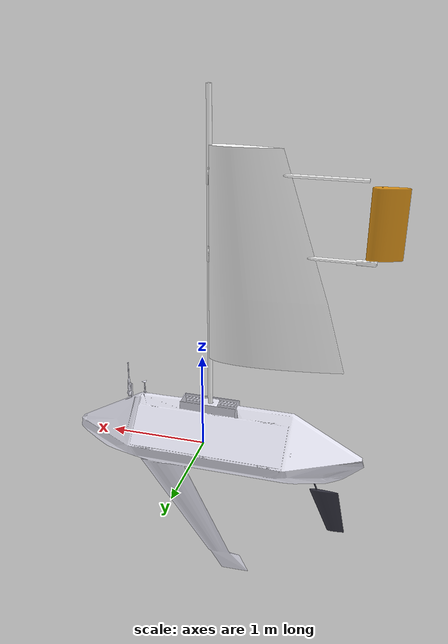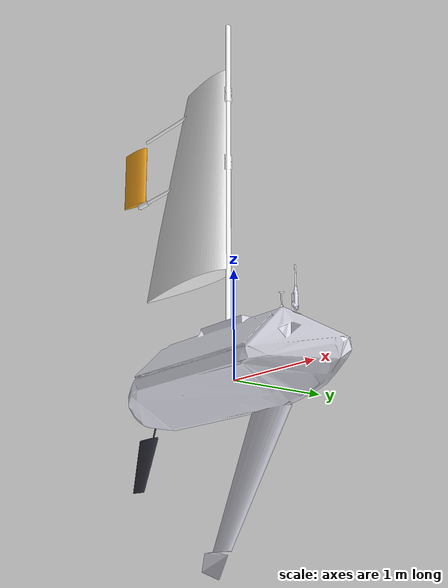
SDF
<?xml version="1.0" encoding="UTF-8"?>
<sdf version="1.9">
  <model name="polaris">
    <!-- Hull: carries the boat's full mass and inertia, and all of the displaced volume.
         The keel is rigidly fixed, so it is part of this link rather than its own. -->
    <link name="hull">
      <inertial>
        <pose>0 0 -0.35 0 0 0</pose>
        <mass>276.0</mass>
        <inertia>
          <ixx>175.86</ixx>
          <ixy>0</ixy>
          <ixz>0</ixz>
          <!-- I_yy is not tracked by the 4-DOF kinematic model (no pitch DOF). Estimated
               from the hull's slenderness; pitch is lightly excited in practice. -->
          <iyy>160.0</iyy>
          <iyz>0</iyz>
          <izz>119.04</izz>
        </inertia>
      </inertial>

      <collision name="hull_collision">
        <pose>-0.135 0 0.1936 0 0 0</pose>
        <geometry>
          <box>
            <size>3.6 0.99 0.55</size>
          </box>
        </geometry>
      </collision>

      <visual name="hull_visual">
        <geometry>
          <mesh>
            <uri>meshes/base_hull.STL</uri>
          </mesh>
        </geometry>
        <material>
          <ambient>0.85 0.85 0.88 1</ambient>
          <diffuse>0.9 0.9 0.95 1</diffuse>
        </material>
      </visual>

      <!-- Wind must reach the sail link via the world's WindEffects system. -->
      <enable_wind>false</enable_wind>
    </link>

    <link name="wing_sail">
      <pose>-0.2693 0.11054 2.02723 0 0 0</pose>
      <inertial>
        <mass>12.0</mass>
        <inertia>
          <ixx>6.0</ixx>
          <ixy>0</ixy>
          <ixz>0</ixz>
          <iyy>6.0</iyy>
          <iyz>0</iyz>
          <izz>0.6</izz>
        </inertia>
      </inertial>
      <collision name="wing_sail_collision">
        <pose>-0.5496 -0.11 -0.282 0 0 0</pose>
        <geometry>
          <box>
            <size>1.532 0.08 3.55</size>
          </box>
        </geometry>
      </collision>
      <visual name="wing_sail_visual">
        <geometry>
          <mesh>
            <uri>meshes/link_wingsail.STL</uri>
          </mesh>
        </geometry>
        <material>
          <ambient>0.95 0.95 0.95 1</ambient>
          <diffuse>1 1 1 1</diffuse>
        </material>
      </visual>

      <visual name="wing_sail_planform_visual">
        <pose>0.2 -0.11 0 0 0 0</pose>
        <geometry>
          <mesh>
            <uri>meshes/wingsail_planform.STL</uri>
          </mesh>
        </geometry>
        <material>
          <ambient>0.95 0.95 0.95 1</ambient>
          <diffuse>1 1 1 1</diffuse>
        </material>
      </visual>
      <enable_wind>true</enable_wind>
    </link>

    <!-- Trim tab: the actuated surface, 1.36 m aft of the mast axis in the CAD (the
         kinematic model's WINGSAIL_TO_TRIM_TAB_BOOM_LENGTH is 1.43 m). -->
    <link name="trim_tab">
      <pose>-1.633 -0.03204 2.45329 0 0 0</pose>
      <inertial>
        <mass>1.2</mass>
        <inertia>
          <ixx>0.4</ixx>
          <ixy>0</ixy>
          <ixz>0</ixz>
          <iyy>0.4</iyy>
          <iyz>0</iyz>
          <izz>0.05</izz>
        </inertia>
      </inertial>
      <collision name="trim_tab_collision">
        <pose>-0.0078 0.0257 0 0 0 0</pose>
        <geometry>
          <box>
            <size>0.31 0.075 0.63</size>
          </box>
        </geometry>
      </collision>
      <visual name="trim_tab_visual">
        <geometry>
          <mesh>
            <uri>meshes/link_trim_tab.STL</uri>
          </mesh>
        </geometry>
        <material>
          <ambient>0.9 0.6 0.1 1</ambient>
          <diffuse>0.9 0.6 0.1 1</diffuse>
        </material>
      </visual>
      <enable_wind>true</enable_wind>
    </link>

    <!-- Rudder: the CAD stock is 1.36 m aft of the CG, matching RUDDER_CE_REL_TO_CG's
         -1.35 m almost exactly. -->
    <link name="rudder">
      <pose>-1.36179 0.00955 -0.57477 0 0 0</pose>
      <inertial>
        <mass>3.0</mass>
        <inertia>
          <ixx>0.3</ixx>
          <ixy>0</ixy>
          <ixz>0</ixz>
          <iyy>0.3</iyy>
          <iyz>0</iyz>
          <izz>0.05</izz>
        </inertia>
      </inertial>
      <collision name="rudder_collision">
        <pose>0.0707 -0.0095 0.2016 0 0 0</pose>
        <geometry>
          <box>
            <size>0.492 0.037 0.931</size>
          </box>
        </geometry>
      </collision>
      <visual name="rudder_visual">
        <geometry>
          <mesh>
            <uri>meshes/link_rudder.STL</uri>
          </mesh>
        </geometry>
        <material>
          <ambient>0.2 0.2 0.25 1</ambient>
          <diffuse>0.2 0.2 0.25 1</diffuse>
        </material>
      </visual>
    </link>

    <!-- JOINTS -->

    <joint name="mast_joint" type="revolute">
      <parent>hull</parent>
      <child>wing_sail</child>
      <axis>
        <xyz>0 0 1</xyz>
        <limit>
          <lower>-3.14159</lower>
          <upper>3.14159</upper>
        </limit>
        <dynamics>
          <damping>2.0</damping>
        </dynamics>
      </axis>
    </joint>

    <!-- Contract joint: trim_tab_joint, revolute about +Z, CCW positive, +/-40 deg. -->
    <joint name="trim_tab_joint" type="revolute">
      <parent>wing_sail</parent>
      <child>trim_tab</child>
      <axis>
        <xyz>0 0 1</xyz>
        <limit>
          <lower>-0.698</lower>
          <upper>0.698</upper>
        </limit>
        <dynamics>
          <damping>0.1</damping>
        </dynamics>
      </axis>
    </joint>

    <joint name="rudder_joint" type="revolute">
      <parent>hull</parent>
      <child>rudder</child>
      <axis>
        <xyz>0 0 1</xyz>
        <limit>
          <lower>-0.524</lower>
          <upper>0.524</upper>
        </limit>
        <dynamics>
          <damping>0.5</damping>
        </dynamics>
      </axis>
    </joint>

    <!-- PLUGINS -->

    <!-- Pose/velocity feedback consumed by gazebo_physics_bridge_node, bridged to
         /gazebo/odometry. Publishes on /model/polaris/odometry by default. -->
    <plugin filename="gz-sim-odometry-publisher-system"
            name="gz::sim::systems::OdometryPublisher">
      <dimensions>3</dimensions>
      <odom_publish_frequency>10</odom_publish_frequency>
      <odom_frame>world</odom_frame>
      <robot_base_frame>polaris</robot_base_frame>
    </plugin>

    <!-- Actuated joints. Topics must match BRIDGED_TOPICS in launch/gazebo_launch.py. -->
    <plugin filename="gz-sim-joint-position-controller-system"
            name="gz::sim::systems::JointPositionController">
      <joint_name>rudder_joint</joint_name>
      <topic>/model/polaris/joint/rudder_joint/cmd_pos</topic>
      <p_gain>8.0</p_gain>
      <i_gain>0.0</i_gain>
      <d_gain>1.0</d_gain>
    </plugin>
    <plugin filename="gz-sim-joint-position-controller-system"
            name="gz::sim::systems::JointPositionController">
      <joint_name>trim_tab_joint</joint_name>
      <topic>/model/polaris/joint/trim_tab_joint/cmd_pos</topic>
      <p_gain>3.0</p_gain>
      <i_gain>0.0</i_gain>
      <d_gain>0.3</d_gain>
    </plugin>

    <plugin filename="gz-sim-lift-drag-system" name="gz::sim::systems::LiftDrag">
      <link_name>wing_sail</link_name>
      <air_density>1.225</air_density>
      <area>2.01</area>
      <a0>0.0</a0>
      <cla>2.75</cla>
      <cda>0.05</cda>
      <alpha_stall>0.44</alpha_stall>
      <cla_stall>-2.7</cla_stall>
      <cda_stall>1.5</cda_stall>
      <cp>0 0 0</cp>
      <forward>1 0 0</forward>
      <upward>0 1 0</upward>
    </plugin>

    <plugin filename="gz-sim-lift-drag-system" name="gz::sim::systems::LiftDrag">
      <link_name>trim_tab</link_name>
      <air_density>1.225</air_density>
      <area>0.198</area>
      <a0>0.0</a0>
      <cla>2.75</cla>
      <cda>0.05</cda>
      <alpha_stall>0.44</alpha_stall>
      <cla_stall>-2.7</cla_stall>
      <cda_stall>1.5</cda_stall>
      <cp>0 0 0</cp>
      <forward>1 0 0</forward>
      <upward>0 1 0</upward>
    </plugin>

    <!-- Hydrodynamics: same LiftDrag system, seawater density. The rudder's CL peaks near
         0.92 at ~20 deg -> cla ~ 2.6/rad, stall at 0.35 rad. -->
    <plugin filename="gz-sim-lift-drag-system" name="gz::sim::systems::LiftDrag">
      <link_name>rudder</link_name>
      <air_density>1027</air_density>
      <area>0.117</area>
      <a0>0.0</a0>
      <cla>2.6</cla>
      <cda>0.02</cda>
      <alpha_stall>0.35</alpha_stall>
      <cla_stall>-2.5</cla_stall>
      <cda_stall>1.2</cda_stall>
      <cp>0 0 0</cp>
      <forward>1 0 0</forward>
      <upward>0 1 0</upward>
    </plugin>

    <plugin filename="gz-sim-lift-drag-system" name="gz::sim::systems::LiftDrag">
      <link_name>hull</link_name>
      <air_density>1027</air_density>
      <area>0.51</area>
      <a0>0.0</a0>
      <cla>2.75</cla>
      <cda>0.05</cda>
      <alpha_stall>0.44</alpha_stall>
      <cla_stall>-2.7</cla_stall>
      <cda_stall>1.5</cda_stall>
      <cp>0.08 0 -1.13</cp>
      <forward>1 0 0</forward>
      <upward>0 1 0</upward>
    </plugin>

    <plugin filename="gz-waves1-hydrodynamics-system" name="gz::sim::systems::Hydrodynamics">
      <enable>polaris::hull</enable>

      <wave>
        <algorithm>fft</algorithm>
        <tile_size>256</tile_size>
        <cell_count>256</cell_count>
        <wind_speed>1.96</wind_speed>
        <wind_angle_deg>45</wind_angle_deg>
        <steepness>2</steepness>
      </wave>

      <hydrodynamics>
        <damping_on>1</damping_on>
        <viscous_drag_on>1</viscous_drag_on>
        <pressure_drag_on>1</pressure_drag_on>

        <cDampL1>1.0E-6</cDampL1>
        <cDampL2>1.0E-6</cDampL2>
        <cDampR1>1.0E-6</cDampR1>
        <cDampR2>1.0E-6</cDampR2>

        <!-- Pressure drag. Stands in for the hull_drag_factor = 0.5 quadratic hull drag
             in constants.py, which this plugin resolves per-face instead. -->
        <cPDrag1>1.0E+2</cPDrag1>
        <cPDrag2>1.0E+2</cPDrag2>
        <fPDrag>0.4</fPDrag>
        <cSDrag1>1.0E+2</cSDrag1>
        <cSDrag2>1.0E+2</cSDrag2>
        <fSDrag>0.4</fSDrag>
        <vRDrag>1.0</vRDrag>
      </hydrodynamics>
    </plugin>
  </model>
</sdf>
